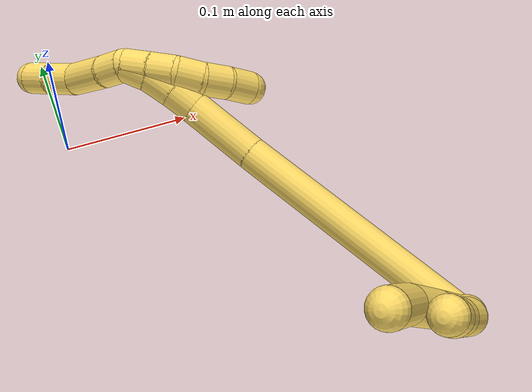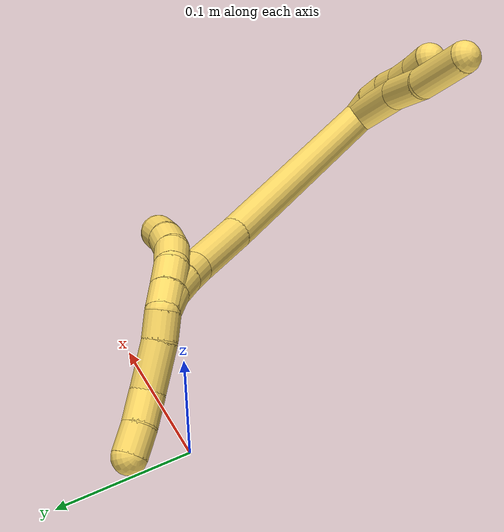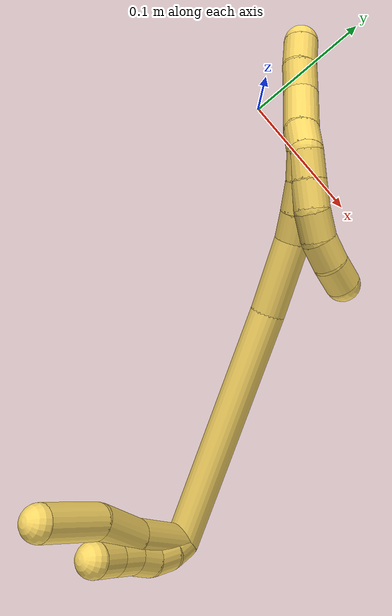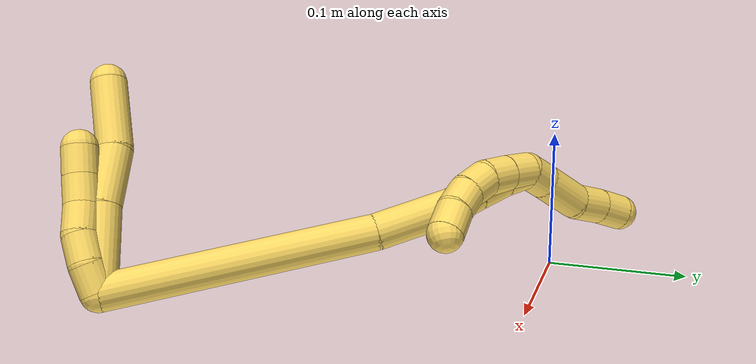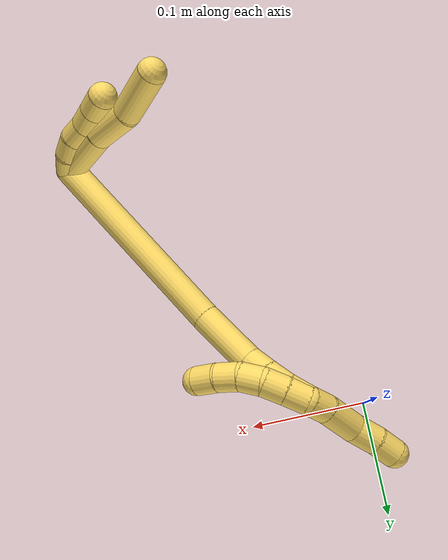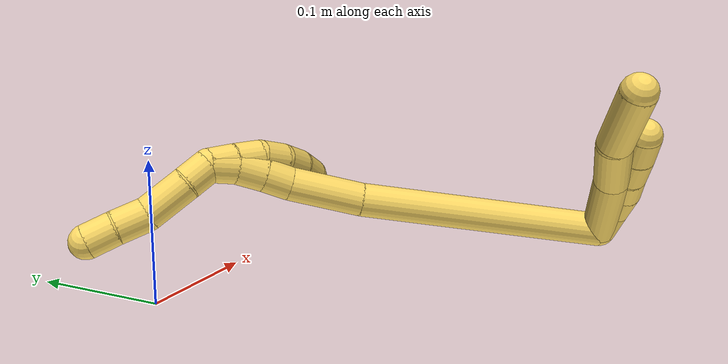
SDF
<sdf version="1.7">
 <world name="default">
  <model name="5">
   <static>0</static>
   <link name="5">
    <collision name="collision-cylinder-e_1_2_8">
     <pose>0.001558 0.004004 0.028913 -0.137609 0.053336 -0.003676</pose>
     <geometry><cylinder><radius>0.0125</radius><length>0.05846</length></cylinder></geometry>
     <surface>
      <friction><ode><mu>1.16</mu><mu2>1.16</mu2><slip1>0</slip1><slip2>0</slip2></ode></friction>
      <contact><ode><kp>1e+06</kp><kd>1</kd><max_vel>0</max_vel><min_depth>0.001</min_depth></ode></contact>
     </surface>
    </collision>
    <visual name="visual-cylinder-e_1_2_8">
     <pose>0.001558 0.004004 0.028913 -0.137609 0.053336 -0.003676</pose>
     <geometry><cylinder><radius>0.0125</radius><length>0.05846</length></cylinder></geometry>
     <material><ambient>1 0.858824 0.4 1</ambient></material>
    </visual>
    <collision name="collision-cylinder-e_2_8_9">
     <pose>0.001508 0.012441 0.078107 -0.215209 -0.077306 0.008355</pose>
     <geometry><cylinder><radius>0.0125</radius><length>0.041645</length></cylinder></geometry>
     <surface>
      <friction><ode><mu>1.16</mu><mu2>1.16</mu2><slip1>0</slip1><slip2>0</slip2></ode></friction>
      <contact><ode><kp>1e+06</kp><kd>1</kd><max_vel>0</max_vel><min_depth>0.001</min_depth></ode></contact>
     </surface>
    </collision>
    <visual name="visual-cylinder-e_2_8_9">
     <pose>0.001508 0.012441 0.078107 -0.215209 -0.077306 0.008355</pose>
     <geometry><cylinder><radius>0.0125</radius><length>0.041645</length></cylinder></geometry>
     <material><ambient>1 0.858824 0.4 1</ambient></material>
    </visual>
    <collision name="collision-cylinder-e_3_9_6">
     <pose>0.002352 0.017279 0.123212 -0.016284 0.098439 -0.000802</pose>
     <geometry><cylinder><radius>0.0125</radius><length>0.049894</length></cylinder></geometry>
     <surface>
      <friction><ode><mu>1.16</mu><mu2>1.16</mu2><slip1>0</slip1><slip2>0</slip2></ode></friction>
      <contact><ode><kp>1e+06</kp><kd>1</kd><max_vel>0</max_vel><min_depth>0.001</min_depth></ode></contact>
     </surface>
    </collision>
    <visual name="visual-cylinder-e_3_9_6">
     <pose>0.002352 0.017279 0.123212 -0.016284 0.098439 -0.000802</pose>
     <geometry><cylinder><radius>0.0125</radius><length>0.049894</length></cylinder></geometry>
     <material><ambient>1 0.858824 0.4 1</ambient></material>
    </visual>
    <collision name="collision-cylinder-e_1_2_10">
     <pose>0.004534 -0.00082 0.008875 0.092153 0.470537 0.022105</pose>
     <geometry><cylinder><radius>0.0125</radius><length>0.02</length></cylinder></geometry>
     <surface>
      <friction><ode><mu>1.16</mu><mu2>1.16</mu2><slip1>0</slip1><slip2>0</slip2></ode></friction>
      <contact><ode><kp>1e+06</kp><kd>1</kd><max_vel>0</max_vel><min_depth>0.001</min_depth></ode></contact>
     </surface>
    </collision>
    <visual name="visual-cylinder-e_1_2_10">
     <pose>0.004534 -0.00082 0.008875 0.092153 0.470537 0.022105</pose>
     <geometry><cylinder><radius>0.0125</radius><length>0.02</length></cylinder></geometry>
     <material><ambient>1 0.858824 0.4 1</ambient></material>
    </visual>
    <collision name="collision-cylinder-e_2_10_11">
     <pose>0.011259 -0.002386 0.027479 0.076442 0.220986 0.008485</pose>
     <geometry><cylinder><radius>0.0125</radius><length>0.02</length></cylinder></geometry>
     <surface>
      <friction><ode><mu>1.16</mu><mu2>1.16</mu2><slip1>0</slip1><slip2>0</slip2></ode></friction>
      <contact><ode><kp>1e+06</kp><kd>1</kd><max_vel>0</max_vel><min_depth>0.001</min_depth></ode></contact>
     </surface>
    </collision>
    <visual name="visual-cylinder-e_2_10_11">
     <pose>0.011259 -0.002386 0.027479 0.076442 0.220986 0.008485</pose>
     <geometry><cylinder><radius>0.0125</radius><length>0.02</length></cylinder></geometry>
     <material><ambient>1 0.858824 0.4 1</ambient></material>
    </visual>
    <collision name="collision-cylinder-e_3_11_12">
     <pose>0.013352 -0.002075 0.047151 -0.105803 -0.009879 0.000523</pose>
     <geometry><cylinder><radius>0.0125</radius><length>0.02</length></cylinder></geometry>
     <surface>
      <friction><ode><mu>1.16</mu><mu2>1.16</mu2><slip1>0</slip1><slip2>0</slip2></ode></friction>
      <contact><ode><kp>1e+06</kp><kd>1</kd><max_vel>0</max_vel><min_depth>0.001</min_depth></ode></contact>
     </surface>
    </collision>
    <visual name="visual-cylinder-e_3_11_12">
     <pose>0.013352 -0.002075 0.047151 -0.105803 -0.009879 0.000523</pose>
     <geometry><cylinder><radius>0.0125</radius><length>0.02</length></cylinder></geometry>
     <material><ambient>1 0.858824 0.4 1</ambient></material>
    </visual>
    <collision name="collision-cylinder-e_4_12_13">
     <pose>0.014493 -0.000347 0.066995 -0.067785 0.124282 -0.004219</pose>
     <geometry><cylinder><radius>0.0125</radius><length>0.02</length></cylinder></geometry>
     <surface>
      <friction><ode><mu>1.16</mu><mu2>1.16</mu2><slip1>0</slip1><slip2>0</slip2></ode></friction>
      <contact><ode><kp>1e+06</kp><kd>1</kd><max_vel>0</max_vel><min_depth>0.001</min_depth></ode></contact>
     </surface>
    </collision>
    <visual name="visual-cylinder-e_4_12_13">
     <pose>0.014493 -0.000347 0.066995 -0.067785 0.124282 -0.004219</pose>
     <geometry><cylinder><radius>0.0125</radius><length>0.02</length></cylinder></geometry>
     <material><ambient>1 0.858824 0.4 1</ambient></material>
    </visual>
    <collision name="collision-cylinder-e_5_13_5">
     <pose>0.017274 0.001409 0.086716 -0.109857 0.154768 -0.008527</pose>
     <geometry><cylinder><radius>0.0125</radius><length>0.02</length></cylinder></geometry>
     <surface>
      <friction><ode><mu>1.16</mu><mu2>1.16</mu2><slip1>0</slip1><slip2>0</slip2></ode></friction>
      <contact><ode><kp>1e+06</kp><kd>1</kd><max_vel>0</max_vel><min_depth>0.001</min_depth></ode></contact>
     </surface>
    </collision>
    <visual name="visual-cylinder-e_5_13_5">
     <pose>0.017274 0.001409 0.086716 -0.109857 0.154768 -0.008527</pose>
     <geometry><cylinder><radius>0.0125</radius><length>0.02</length></cylinder></geometry>
     <material><ambient>1 0.858824 0.4 1</ambient></material>
    </visual>
    <collision name="collision-cylinder-e_1_2_14">
     <pose>-0.042599 0.080357 0.012068 -1.42174 -0.482854 0.41784</pose>
     <geometry><cylinder><radius>0.0125</radius><length>0.183495</length></cylinder></geometry>
     <surface>
      <friction><ode><mu>1.16</mu><mu2>1.16</mu2><slip1>0</slip1><slip2>0</slip2></ode></friction>
      <contact><ode><kp>1e+06</kp><kd>1</kd><max_vel>0</max_vel><min_depth>0.001</min_depth></ode></contact>
     </surface>
    </collision>
    <visual name="visual-cylinder-e_1_2_14">
     <pose>-0.042599 0.080357 0.012068 -1.42174 -0.482854 0.41784</pose>
     <geometry><cylinder><radius>0.0125</radius><length>0.183495</length></cylinder></geometry>
     <material><ambient>1 0.858824 0.4 1</ambient></material>
    </visual>
    <collision name="collision-cylinder-e_2_14_15">
     <pose>-0.096502 0.184749 0.030378 -1.31667 -0.427174 0.332416</pose>
     <geometry><cylinder><radius>0.0125</radius><length>0.054567</length></cylinder></geometry>
     <surface>
      <friction><ode><mu>1.16</mu><mu2>1.16</mu2><slip1>0</slip1><slip2>0</slip2></ode></friction>
      <contact><ode><kp>1e+06</kp><kd>1</kd><max_vel>0</max_vel><min_depth>0.001</min_depth></ode></contact>
     </surface>
    </collision>
    <visual name="visual-cylinder-e_2_14_15">
     <pose>-0.096502 0.184749 0.030378 -1.31667 -0.427174 0.332416</pose>
     <geometry><cylinder><radius>0.0125</radius><length>0.054567</length></cylinder></geometry>
     <material><ambient>1 0.858824 0.4 1</ambient></material>
    </visual>
    <collision name="collision-cylinder-e_3_15_16">
     <pose>-0.111641 0.217215 0.040628 -1.12713 -0.389806 0.248214</pose>
     <geometry><cylinder><radius>0.0125</radius><length>0.020185</length></cylinder></geometry>
     <surface>
      <friction><ode><mu>1.16</mu><mu2>1.16</mu2><slip1>0</slip1><slip2>0</slip2></ode></friction>
      <contact><ode><kp>1e+06</kp><kd>1</kd><max_vel>0</max_vel><min_depth>0.001</min_depth></ode></contact>
     </surface>
    </collision>
    <visual name="visual-cylinder-e_3_15_16">
     <pose>-0.111641 0.217215 0.040628 -1.12713 -0.389806 0.248214</pose>
     <geometry><cylinder><radius>0.0125</radius><length>0.020185</length></cylinder></geometry>
     <material><ambient>1 0.858824 0.4 1</ambient></material>
    </visual>
    <collision name="collision-cylinder-e_4_16_17">
     <pose>-0.120092 0.234367 0.048784 -1.12674 -0.445866 0.284459</pose>
     <geometry><cylinder><radius>0.0125</radius><length>0.021406</length></cylinder></geometry>
     <surface>
      <friction><ode><mu>1.16</mu><mu2>1.16</mu2><slip1>0</slip1><slip2>0</slip2></ode></friction>
      <contact><ode><kp>1e+06</kp><kd>1</kd><max_vel>0</max_vel><min_depth>0.001</min_depth></ode></contact>
     </surface>
    </collision>
    <visual name="visual-cylinder-e_4_16_17">
     <pose>-0.120092 0.234367 0.048784 -1.12674 -0.445866 0.284459</pose>
     <geometry><cylinder><radius>0.0125</radius><length>0.021406</length></cylinder></geometry>
     <material><ambient>1 0.858824 0.4 1</ambient></material>
    </visual>
    <collision name="collision-cylinder-e_5_17_1">
     <pose>-0.131045 0.250283 0.056329 -1.12979 -0.672589 0.436068</pose>
     <geometry><cylinder><radius>0.0125</radius><length>0.020346</length></cylinder></geometry>
     <surface>
      <friction><ode><mu>1.16</mu><mu2>1.16</mu2><slip1>0</slip1><slip2>0</slip2></ode></friction>
      <contact><ode><kp>1e+06</kp><kd>1</kd><max_vel>0</max_vel><min_depth>0.001</min_depth></ode></contact>
     </surface>
    </collision>
    <visual name="visual-cylinder-e_5_17_1">
     <pose>-0.131045 0.250283 0.056329 -1.12979 -0.672589 0.436068</pose>
     <geometry><cylinder><radius>0.0125</radius><length>0.020346</length></cylinder></geometry>
     <material><ambient>1 0.858824 0.4 1</ambient></material>
    </visual>
    <collision name="collision-cylinder-e_1_1_18">
     <pose>-0.129395 0.252074 0.057088 2.0247 0.925424 1.34753</pose>
     <geometry><cylinder><radius>0.0125</radius><length>0.02</length></cylinder></geometry>
     <surface>
      <friction><ode><mu>1.16</mu><mu2>1.16</mu2><slip1>0</slip1><slip2>0</slip2></ode></friction>
      <contact><ode><kp>1e+06</kp><kd>1</kd><max_vel>0</max_vel><min_depth>0.001</min_depth></ode></contact>
     </surface>
    </collision>
    <visual name="visual-cylinder-e_1_1_18">
     <pose>-0.129395 0.252074 0.057088 2.0247 0.925424 1.34753</pose>
     <geometry><cylinder><radius>0.0125</radius><length>0.02</length></cylinder></geometry>
     <material><ambient>1 0.858824 0.4 1</ambient></material>
    </visual>
    <collision name="collision-cylinder-e_2_18_19">
     <pose>-0.113578 0.241256 0.051379 2.08708 0.89908 1.38397</pose>
     <geometry><cylinder><radius>0.0125</radius><length>0.02</length></cylinder></geometry>
     <surface>
      <friction><ode><mu>1.16</mu><mu2>1.16</mu2><slip1>0</slip1><slip2>0</slip2></ode></friction>
      <contact><ode><kp>1e+06</kp><kd>1</kd><max_vel>0</max_vel><min_depth>0.001</min_depth></ode></contact>
     </surface>
    </collision>
    <visual name="visual-cylinder-e_2_18_19">
     <pose>-0.113578 0.241256 0.051379 2.08708 0.89908 1.38397</pose>
     <geometry><cylinder><radius>0.0125</radius><length>0.02</length></cylinder></geometry>
     <material><ambient>1 0.858824 0.4 1</ambient></material>
    </visual>
    <collision name="collision-cylinder-e_3_19_20">
     <pose>-0.09952 0.230592 0.04251 2.40547 0.672622 1.47283</pose>
     <geometry><cylinder><radius>0.0125</radius><length>0.02</length></cylinder></geometry>
     <surface>
      <friction><ode><mu>1.16</mu><mu2>1.16</mu2><slip1>0</slip1><slip2>0</slip2></ode></friction>
      <contact><ode><kp>1e+06</kp><kd>1</kd><max_vel>0</max_vel><min_depth>0.001</min_depth></ode></contact>
     </surface>
    </collision>
    <visual name="visual-cylinder-e_3_19_20">
     <pose>-0.09952 0.230592 0.04251 2.40547 0.672622 1.47283</pose>
     <geometry><cylinder><radius>0.0125</radius><length>0.02</length></cylinder></geometry>
     <material><ambient>1 0.858824 0.4 1</ambient></material>
    </visual>
    <collision name="collision-cylinder-e_4_20_21">
     <pose>-0.08791 0.221833 0.029048 2.71253 0.568076 1.85928</pose>
     <geometry><cylinder><radius>0.0125</radius><length>0.02</length></cylinder></geometry>
     <surface>
      <friction><ode><mu>1.16</mu><mu2>1.16</mu2><slip1>0</slip1><slip2>0</slip2></ode></friction>
      <contact><ode><kp>1e+06</kp><kd>1</kd><max_vel>0</max_vel><min_depth>0.001</min_depth></ode></contact>
     </surface>
    </collision>
    <visual name="visual-cylinder-e_4_20_21">
     <pose>-0.08791 0.221833 0.029048 2.71253 0.568076 1.85928</pose>
     <geometry><cylinder><radius>0.0125</radius><length>0.02</length></cylinder></geometry>
     <material><ambient>1 0.858824 0.4 1</ambient></material>
    </visual>
    <collision name="collision-cylinder-e_5_21_4">
     <pose>-0.078664 0.215295 0.012672 2.8067 0.396934 1.74372</pose>
     <geometry><cylinder><radius>0.0125</radius><length>0.02</length></cylinder></geometry>
     <surface>
      <friction><ode><mu>1.16</mu><mu2>1.16</mu2><slip1>0</slip1><slip2>0</slip2></ode></friction>
      <contact><ode><kp>1e+06</kp><kd>1</kd><max_vel>0</max_vel><min_depth>0.001</min_depth></ode></contact>
     </surface>
    </collision>
    <visual name="visual-cylinder-e_5_21_4">
     <pose>-0.078664 0.215295 0.012672 2.8067 0.396934 1.74372</pose>
     <geometry><cylinder><radius>0.0125</radius><length>0.02</length></cylinder></geometry>
     <material><ambient>1 0.858824 0.4 1</ambient></material>
    </visual>
    <collision name="collision-cylinder-e_1_1_22">
     <pose>-0.146903 0.260286 0.058458 -1.99504 -1.25789 1.68995</pose>
     <geometry><cylinder><radius>0.0125</radius><length>0.020011</length></cylinder></geometry>
     <surface>
      <friction><ode><mu>1.16</mu><mu2>1.16</mu2><slip1>0</slip1><slip2>0</slip2></ode></friction>
      <contact><ode><kp>1e+06</kp><kd>1</kd><max_vel>0</max_vel><min_depth>0.001</min_depth></ode></contact>
     </surface>
    </collision>
    <visual name="visual-cylinder-e_1_1_22">
     <pose>-0.146903 0.260286 0.058458 -1.99504 -1.25789 1.68995</pose>
     <geometry><cylinder><radius>0.0125</radius><length>0.020011</length></cylinder></geometry>
     <material><ambient>1 0.858824 0.4 1</ambient></material>
    </visual>
    <collision name="collision-cylinder-e_2_22_23">
     <pose>-0.172321 0.269112 0.053146 -2.16233 -1.14288 1.7575</pose>
     <geometry><cylinder><radius>0.0125</radius><length>0.034949</length></cylinder></geometry>
     <surface>
      <friction><ode><mu>1.16</mu><mu2>1.16</mu2><slip1>0</slip1><slip2>0</slip2></ode></friction>
      <contact><ode><kp>1e+06</kp><kd>1</kd><max_vel>0</max_vel><min_depth>0.001</min_depth></ode></contact>
     </surface>
    </collision>
    <visual name="visual-cylinder-e_2_22_23">
     <pose>-0.172321 0.269112 0.053146 -2.16233 -1.14288 1.7575</pose>
     <geometry><cylinder><radius>0.0125</radius><length>0.034949</length></cylinder></geometry>
     <material><ambient>1 0.858824 0.4 1</ambient></material>
    </visual>
    <collision name="collision-cylinder-e_3_23_24">
     <pose>-0.198552 0.280893 0.0494 -1.51921 -1.0616 1.01711</pose>
     <geometry><cylinder><radius>0.0125</radius><length>0.023668</length></cylinder></geometry>
     <surface>
      <friction><ode><mu>1.16</mu><mu2>1.16</mu2><slip1>0</slip1><slip2>0</slip2></ode></friction>
      <contact><ode><kp>1e+06</kp><kd>1</kd><max_vel>0</max_vel><min_depth>0.001</min_depth></ode></contact>
     </surface>
    </collision>
    <visual name="visual-cylinder-e_3_23_24">
     <pose>-0.198552 0.280893 0.0494 -1.51921 -1.0616 1.01711</pose>
     <geometry><cylinder><radius>0.0125</radius><length>0.023668</length></cylinder></geometry>
     <material><ambient>1 0.858824 0.4 1</ambient></material>
    </visual>
    <collision name="collision-cylinder-e_4_24_3">
     <pose>-0.218041 0.292082 0.04875 -1.74366 -1.02907 1.18419</pose>
     <geometry><cylinder><radius>0.0125</radius><length>0.021373</length></cylinder></geometry>
     <surface>
      <friction><ode><mu>1.16</mu><mu2>1.16</mu2><slip1>0</slip1><slip2>0</slip2></ode></friction>
      <contact><ode><kp>1e+06</kp><kd>1</kd><max_vel>0</max_vel><min_depth>0.001</min_depth></ode></contact>
     </surface>
    </collision>
    <visual name="visual-cylinder-e_4_24_3">
     <pose>-0.218041 0.292082 0.04875 -1.74366 -1.02907 1.18419</pose>
     <geometry><cylinder><radius>0.0125</radius><length>0.021373</length></cylinder></geometry>
     <material><ambient>1 0.858824 0.4 1</ambient></material>
    </visual>
    <collision name="collision-sphere-3">
     <pose>-0.227198 0.29751 0.047802 0 -0 0</pose>
     <geometry><sphere><radius>0.0125</radius></sphere></geometry>
     <surface>
      <friction><ode><mu>1.16</mu><mu2>1.16</mu2><slip1>0</slip1><slip2>0</slip2></ode></friction>
      <contact><ode><kp>1e+06</kp><kd>1</kd><max_vel>0</max_vel><min_depth>0.001</min_depth></ode></contact>
     </surface>
    </collision>
    <visual name="visual-sphere-3">
     <pose>-0.227198 0.29751 0.047802 0 -0 0</pose>
     <geometry><sphere><radius>0.0125</radius></sphere></geometry>
     <material><ambient>1 0.858824 0.4 1</ambient></material>
    </visual>
    <collision name="collision-sphere-24">
     <pose>-0.208885 0.286654 0.049698 0 -0 0</pose>
     <geometry><sphere><radius>0.0125</radius></sphere></geometry>
     <surface>
      <friction><ode><mu>1.16</mu><mu2>1.16</mu2><slip1>0</slip1><slip2>0</slip2></ode></friction>
      <contact><ode><kp>1e+06</kp><kd>1</kd><max_vel>0</max_vel><min_depth>0.001</min_depth></ode></contact>
     </surface>
    </collision>
    <visual name="visual-sphere-24">
     <pose>-0.208885 0.286654 0.049698 0 -0 0</pose>
     <geometry><sphere><radius>0.0125</radius></sphere></geometry>
     <material><ambient>1 0.858824 0.4 1</ambient></material>
    </visual>
    <collision name="collision-sphere-23">
     <pose>-0.18822 0.275132 0.049103 0 -0 0</pose>
     <geometry><sphere><radius>0.0125</radius></sphere></geometry>
     <surface>
      <friction><ode><mu>1.16</mu><mu2>1.16</mu2><slip1>0</slip1><slip2>0</slip2></ode></friction>
      <contact><ode><kp>1e+06</kp><kd>1</kd><max_vel>0</max_vel><min_depth>0.001</min_depth></ode></contact>
     </surface>
    </collision>
    <visual name="visual-sphere-23">
     <pose>-0.18822 0.275132 0.049103 0 -0 0</pose>
     <geometry><sphere><radius>0.0125</radius></sphere></geometry>
     <material><ambient>1 0.858824 0.4 1</ambient></material>
    </visual>
    <collision name="collision-sphere-22">
     <pose>-0.156422 0.263093 0.05719 0 -0 0</pose>
     <geometry><sphere><radius>0.0125</radius></sphere></geometry>
     <surface>
      <friction><ode><mu>1.16</mu><mu2>1.16</mu2><slip1>0</slip1><slip2>0</slip2></ode></friction>
      <contact><ode><kp>1e+06</kp><kd>1</kd><max_vel>0</max_vel><min_depth>0.001</min_depth></ode></contact>
     </surface>
    </collision>
    <visual name="visual-sphere-22">
     <pose>-0.156422 0.263093 0.05719 0 -0 0</pose>
     <geometry><sphere><radius>0.0125</radius></sphere></geometry>
     <material><ambient>1 0.858824 0.4 1</ambient></material>
    </visual>
    <collision name="collision-sphere-4">
     <pose>-0.074798 0.212264 0.003962 0 -0 0</pose>
     <geometry><sphere><radius>0.0125</radius></sphere></geometry>
     <surface>
      <friction><ode><mu>1.16</mu><mu2>1.16</mu2><slip1>0</slip1><slip2>0</slip2></ode></friction>
      <contact><ode><kp>1e+06</kp><kd>1</kd><max_vel>0</max_vel><min_depth>0.001</min_depth></ode></contact>
     </surface>
    </collision>
    <visual name="visual-sphere-4">
     <pose>-0.074798 0.212264 0.003962 0 -0 0</pose>
     <geometry><sphere><radius>0.0125</radius></sphere></geometry>
     <material><ambient>1 0.858824 0.4 1</ambient></material>
    </visual>
    <collision name="collision-sphere-21">
     <pose>-0.08253 0.218326 0.021383 0 -0 0</pose>
     <geometry><sphere><radius>0.0125</radius></sphere></geometry>
     <surface>
      <friction><ode><mu>1.16</mu><mu2>1.16</mu2><slip1>0</slip1><slip2>0</slip2></ode></friction>
      <contact><ode><kp>1e+06</kp><kd>1</kd><max_vel>0</max_vel><min_depth>0.001</min_depth></ode></contact>
     </surface>
    </collision>
    <visual name="visual-sphere-21">
     <pose>-0.08253 0.218326 0.021383 0 -0 0</pose>
     <geometry><sphere><radius>0.0125</radius></sphere></geometry>
     <material><ambient>1 0.858824 0.4 1</ambient></material>
    </visual>
    <collision name="collision-sphere-20">
     <pose>-0.09329 0.22534 0.036713 0 -0 0</pose>
     <geometry><sphere><radius>0.0125</radius></sphere></geometry>
     <surface>
      <friction><ode><mu>1.16</mu><mu2>1.16</mu2><slip1>0</slip1><slip2>0</slip2></ode></friction>
      <contact><ode><kp>1e+06</kp><kd>1</kd><max_vel>0</max_vel><min_depth>0.001</min_depth></ode></contact>
     </surface>
    </collision>
    <visual name="visual-sphere-20">
     <pose>-0.09329 0.22534 0.036713 0 -0 0</pose>
     <geometry><sphere><radius>0.0125</radius></sphere></geometry>
     <material><ambient>1 0.858824 0.4 1</ambient></material>
    </visual>
    <collision name="collision-sphere-11">
     <pose>0.013451 -0.003131 0.037208 0 -0 0</pose>
     <geometry><sphere><radius>0.0125</radius></sphere></geometry>
     <surface>
      <friction><ode><mu>1.16</mu><mu2>1.16</mu2><slip1>0</slip1><slip2>0</slip2></ode></friction>
      <contact><ode><kp>1e+06</kp><kd>1</kd><max_vel>0</max_vel><min_depth>0.001</min_depth></ode></contact>
     </surface>
    </collision>
    <visual name="visual-sphere-11">
     <pose>0.013451 -0.003131 0.037208 0 -0 0</pose>
     <geometry><sphere><radius>0.0125</radius></sphere></geometry>
     <material><ambient>1 0.858824 0.4 1</ambient></material>
    </visual>
    <collision name="collision-sphere-10">
     <pose>0.009067 -0.00164 0.017751 0 -0 0</pose>
     <geometry><sphere><radius>0.0125</radius></sphere></geometry>
     <surface>
      <friction><ode><mu>1.16</mu><mu2>1.16</mu2><slip1>0</slip1><slip2>0</slip2></ode></friction>
      <contact><ode><kp>1e+06</kp><kd>1</kd><max_vel>0</max_vel><min_depth>0.001</min_depth></ode></contact>
     </surface>
    </collision>
    <visual name="visual-sphere-10">
     <pose>0.009067 -0.00164 0.017751 0 -0 0</pose>
     <geometry><sphere><radius>0.0125</radius></sphere></geometry>
     <material><ambient>1 0.858824 0.4 1</ambient></material>
    </visual>
    <collision name="collision-sphere-6">
     <pose>0.004804 0.017683 0.148035 0 -0 0</pose>
     <geometry><sphere><radius>0.0125</radius></sphere></geometry>
     <surface>
      <friction><ode><mu>1.16</mu><mu2>1.16</mu2><slip1>0</slip1><slip2>0</slip2></ode></friction>
      <contact><ode><kp>1e+06</kp><kd>1</kd><max_vel>0</max_vel><min_depth>0.001</min_depth></ode></contact>
     </surface>
    </collision>
    <visual name="visual-sphere-6">
     <pose>0.004804 0.017683 0.148035 0 -0 0</pose>
     <geometry><sphere><radius>0.0125</radius></sphere></geometry>
     <material><ambient>1 0.858824 0.4 1</ambient></material>
    </visual>
    <collision name="collision-sphere-9">
     <pose>-0.0001 0.016875 0.098389 0 -0 0</pose>
     <geometry><sphere><radius>0.0125</radius></sphere></geometry>
     <surface>
      <friction><ode><mu>1.16</mu><mu2>1.16</mu2><slip1>0</slip1><slip2>0</slip2></ode></friction>
      <contact><ode><kp>1e+06</kp><kd>1</kd><max_vel>0</max_vel><min_depth>0.001</min_depth></ode></contact>
     </surface>
    </collision>
    <visual name="visual-sphere-9">
     <pose>-0.0001 0.016875 0.098389 0 -0 0</pose>
     <geometry><sphere><radius>0.0125</radius></sphere></geometry>
     <material><ambient>1 0.858824 0.4 1</ambient></material>
    </visual>
    <collision name="collision-sphere-2">
     <geometry><sphere><radius>0.0125</radius></sphere></geometry>
     <surface>
      <friction><ode><mu>1.16</mu><mu2>1.16</mu2><slip1>0</slip1><slip2>0</slip2></ode></friction>
      <contact><ode><kp>1e+06</kp><kd>1</kd><max_vel>0</max_vel><min_depth>0.001</min_depth></ode></contact>
     </surface>
    </collision>
    <visual name="visual-sphere-2">
     <geometry><sphere><radius>0.0125</radius></sphere></geometry>
     <material><ambient>1 0.858824 0.4 1</ambient></material>
    </visual>
    <collision name="collision-sphere-19">
     <pose>-0.105751 0.235843 0.048307 0 -0 0</pose>
     <geometry><sphere><radius>0.0125</radius></sphere></geometry>
     <surface>
      <friction><ode><mu>1.16</mu><mu2>1.16</mu2><slip1>0</slip1><slip2>0</slip2></ode></friction>
      <contact><ode><kp>1e+06</kp><kd>1</kd><max_vel>0</max_vel><min_depth>0.001</min_depth></ode></contact>
     </surface>
    </collision>
    <visual name="visual-sphere-19">
     <pose>-0.105751 0.235843 0.048307 0 -0 0</pose>
     <geometry><sphere><radius>0.0125</radius></sphere></geometry>
     <material><ambient>1 0.858824 0.4 1</ambient></material>
    </visual>
    <collision name="collision-sphere-8">
     <pose>0.003117 0.008008 0.057826 0 -0 0</pose>
     <geometry><sphere><radius>0.0125</radius></sphere></geometry>
     <surface>
      <friction><ode><mu>1.16</mu><mu2>1.16</mu2><slip1>0</slip1><slip2>0</slip2></ode></friction>
      <contact><ode><kp>1e+06</kp><kd>1</kd><max_vel>0</max_vel><min_depth>0.001</min_depth></ode></contact>
     </surface>
    </collision>
    <visual name="visual-sphere-8">
     <pose>0.003117 0.008008 0.057826 0 -0 0</pose>
     <geometry><sphere><radius>0.0125</radius></sphere></geometry>
     <material><ambient>1 0.858824 0.4 1</ambient></material>
    </visual>
    <collision name="collision-sphere-12">
     <pose>0.013254 -0.001019 0.057095 0 -0 0</pose>
     <geometry><sphere><radius>0.0125</radius></sphere></geometry>
     <surface>
      <friction><ode><mu>1.16</mu><mu2>1.16</mu2><slip1>0</slip1><slip2>0</slip2></ode></friction>
      <contact><ode><kp>1e+06</kp><kd>1</kd><max_vel>0</max_vel><min_depth>0.001</min_depth></ode></contact>
     </surface>
    </collision>
    <visual name="visual-sphere-12">
     <pose>0.013254 -0.001019 0.057095 0 -0 0</pose>
     <geometry><sphere><radius>0.0125</radius></sphere></geometry>
     <material><ambient>1 0.858824 0.4 1</ambient></material>
    </visual>
    <collision name="collision-sphere-13">
     <pose>0.015733 0.000326 0.076895 0 -0 0</pose>
     <geometry><sphere><radius>0.0125</radius></sphere></geometry>
     <surface>
      <friction><ode><mu>1.16</mu><mu2>1.16</mu2><slip1>0</slip1><slip2>0</slip2></ode></friction>
      <contact><ode><kp>1e+06</kp><kd>1</kd><max_vel>0</max_vel><min_depth>0.001</min_depth></ode></contact>
     </surface>
    </collision>
    <visual name="visual-sphere-13">
     <pose>0.015733 0.000326 0.076895 0 -0 0</pose>
     <geometry><sphere><radius>0.0125</radius></sphere></geometry>
     <material><ambient>1 0.858824 0.4 1</ambient></material>
    </visual>
    <collision name="collision-sphere-5">
     <pose>0.018816 0.002492 0.096537 0 -0 0</pose>
     <geometry><sphere><radius>0.0125</radius></sphere></geometry>
     <surface>
      <friction><ode><mu>1.16</mu><mu2>1.16</mu2><slip1>0</slip1><slip2>0</slip2></ode></friction>
      <contact><ode><kp>1e+06</kp><kd>1</kd><max_vel>0</max_vel><min_depth>0.001</min_depth></ode></contact>
     </surface>
    </collision>
    <visual name="visual-sphere-5">
     <pose>0.018816 0.002492 0.096537 0 -0 0</pose>
     <geometry><sphere><radius>0.0125</radius></sphere></geometry>
     <material><ambient>1 0.858824 0.4 1</ambient></material>
    </visual>
    <collision name="collision-sphere-14">
     <pose>-0.085199 0.160715 0.024135 0 -0 0</pose>
     <geometry><sphere><radius>0.0125</radius></sphere></geometry>
     <surface>
      <friction><ode><mu>1.16</mu><mu2>1.16</mu2><slip1>0</slip1><slip2>0</slip2></ode></friction>
      <contact><ode><kp>1e+06</kp><kd>1</kd><max_vel>0</max_vel><min_depth>0.001</min_depth></ode></contact>
     </surface>
    </collision>
    <visual name="visual-sphere-14">
     <pose>-0.085199 0.160715 0.024135 0 -0 0</pose>
     <geometry><sphere><radius>0.0125</radius></sphere></geometry>
     <material><ambient>1 0.858824 0.4 1</ambient></material>
    </visual>
    <collision name="collision-sphere-15">
     <pose>-0.107806 0.208783 0.03662 0 -0 0</pose>
     <geometry><sphere><radius>0.0125</radius></sphere></geometry>
     <surface>
      <friction><ode><mu>1.16</mu><mu2>1.16</mu2><slip1>0</slip1><slip2>0</slip2></ode></friction>
      <contact><ode><kp>1e+06</kp><kd>1</kd><max_vel>0</max_vel><min_depth>0.001</min_depth></ode></contact>
     </surface>
    </collision>
    <visual name="visual-sphere-15">
     <pose>-0.107806 0.208783 0.03662 0 -0 0</pose>
     <geometry><sphere><radius>0.0125</radius></sphere></geometry>
     <material><ambient>1 0.858824 0.4 1</ambient></material>
    </visual>
    <collision name="collision-sphere-16">
     <pose>-0.115476 0.225647 0.044635 0 -0 0</pose>
     <geometry><sphere><radius>0.0125</radius></sphere></geometry>
     <surface>
      <friction><ode><mu>1.16</mu><mu2>1.16</mu2><slip1>0</slip1><slip2>0</slip2></ode></friction>
      <contact><ode><kp>1e+06</kp><kd>1</kd><max_vel>0</max_vel><min_depth>0.001</min_depth></ode></contact>
     </surface>
    </collision>
    <visual name="visual-sphere-16">
     <pose>-0.115476 0.225647 0.044635 0 -0 0</pose>
     <geometry><sphere><radius>0.0125</radius></sphere></geometry>
     <material><ambient>1 0.858824 0.4 1</ambient></material>
    </visual>
    <collision name="collision-sphere-17">
     <pose>-0.124707 0.243087 0.052932 0 -0 0</pose>
     <geometry><sphere><radius>0.0125</radius></sphere></geometry>
     <surface>
      <friction><ode><mu>1.16</mu><mu2>1.16</mu2><slip1>0</slip1><slip2>0</slip2></ode></friction>
      <contact><ode><kp>1e+06</kp><kd>1</kd><max_vel>0</max_vel><min_depth>0.001</min_depth></ode></contact>
     </surface>
    </collision>
    <visual name="visual-sphere-17">
     <pose>-0.124707 0.243087 0.052932 0 -0 0</pose>
     <geometry><sphere><radius>0.0125</radius></sphere></geometry>
     <material><ambient>1 0.858824 0.4 1</ambient></material>
    </visual>
    <collision name="collision-sphere-1">
     <pose>-0.137383 0.25748 0.059726 0 -0 0</pose>
     <geometry><sphere><radius>0.0125</radius></sphere></geometry>
     <surface>
      <friction><ode><mu>1.16</mu><mu2>1.16</mu2><slip1>0</slip1><slip2>0</slip2></ode></friction>
      <contact><ode><kp>1e+06</kp><kd>1</kd><max_vel>0</max_vel><min_depth>0.001</min_depth></ode></contact>
     </surface>
    </collision>
    <visual name="visual-sphere-1">
     <pose>-0.137383 0.25748 0.059726 0 -0 0</pose>
     <geometry><sphere><radius>0.0125</radius></sphere></geometry>
     <material><ambient>1 0.858824 0.4 1</ambient></material>
    </visual>
    <collision name="collision-sphere-18">
     <pose>-0.121406 0.246668 0.054451 0 -0 0</pose>
     <geometry><sphere><radius>0.0125</radius></sphere></geometry>
     <surface>
      <friction><ode><mu>1.16</mu><mu2>1.16</mu2><slip1>0</slip1><slip2>0</slip2></ode></friction>
      <contact><ode><kp>1e+06</kp><kd>1</kd><max_vel>0</max_vel><min_depth>0.001</min_depth></ode></contact>
     </surface>
    </collision>
    <visual name="visual-sphere-18">
     <pose>-0.121406 0.246668 0.054451 0 -0 0</pose>
     <geometry><sphere><radius>0.0125</radius></sphere></geometry>
     <material><ambient>1 0.858824 0.4 1</ambient></material>
    </visual>
    <inertial>
     <pose>-0.063448 0.122101 0.042413 0 -0 0</pose>
     <mass>0.75</mass>
     <inertia>
      <ixx>0.000678</ixx>
      <ixy>0</ixy>
      <ixz>0</ixz>
      <iyy>0.000458</iyy>
      <iyz>0</iyz>
      <izz>-0.000209</izz>
     </inertia>
    </inertial>
   </link>
   <pose>0.211851 -0.255836 0.031551 0.469657 -0.629823 -0.234459</pose>
  </model>
 </world>
</sdf>
